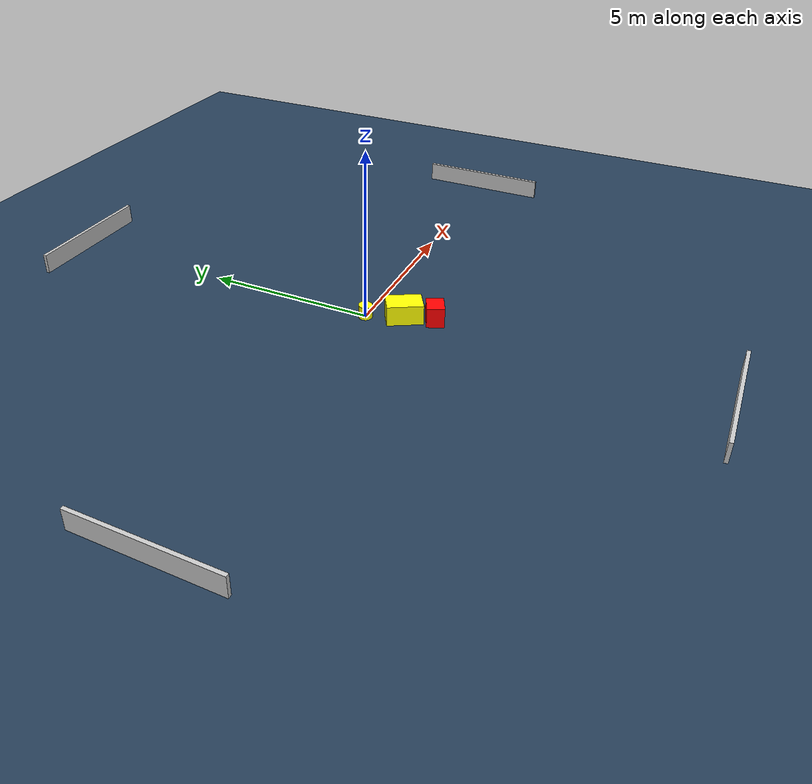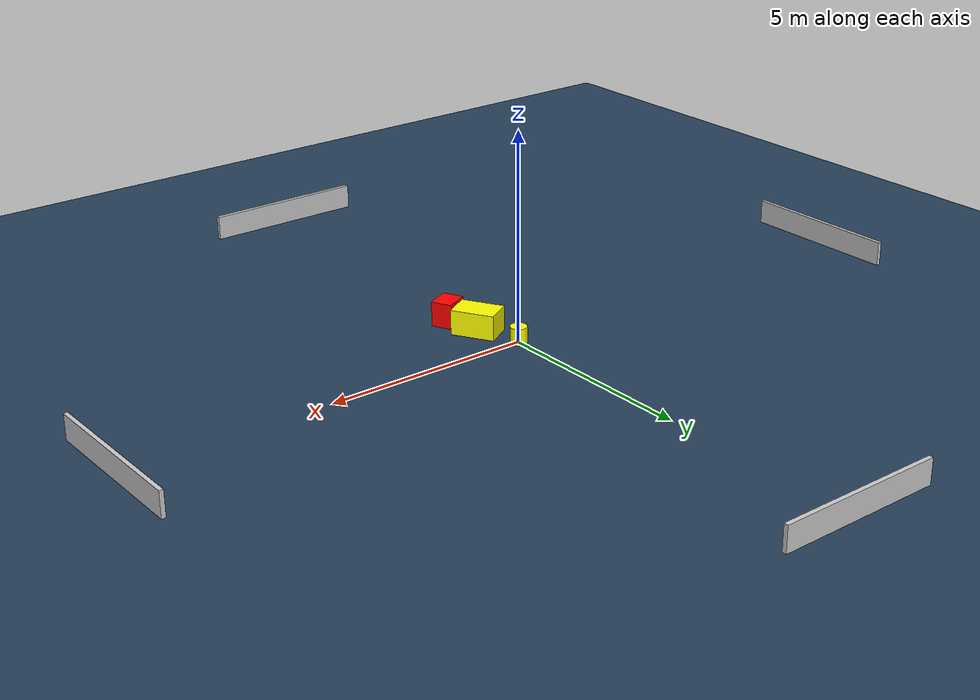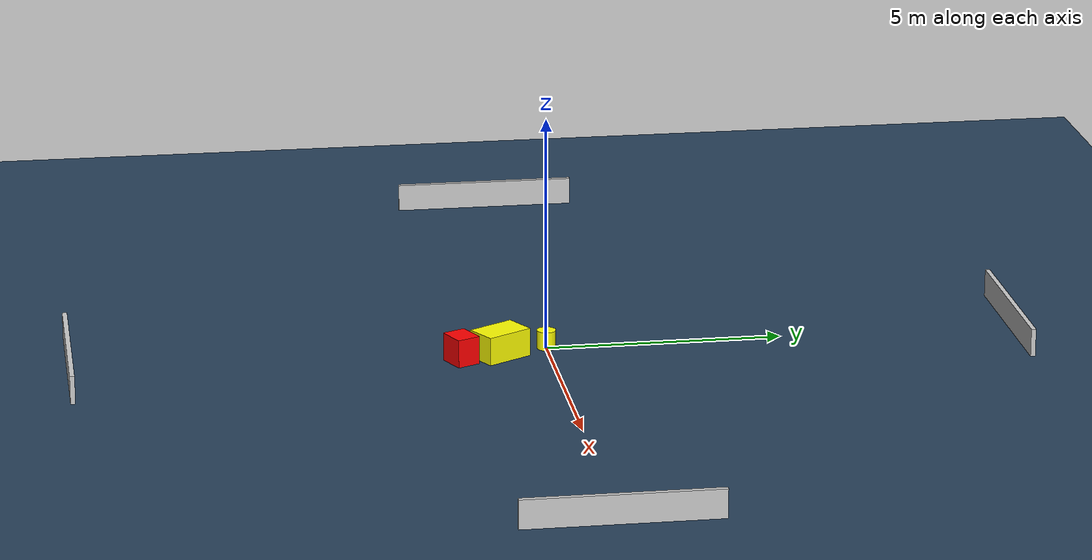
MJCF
<?xml version="1.0" ?>
<mujoco model="generated_environment">
  <option timestep="0.01" integrator="RK4" cone="elliptic"/>
  <default>
    <geom density="1"/>
  </default>
  <asset>
    <texture builtin="gradient" height="3072" name="skybox" rgb1="0.3 0.5 0.7" rgb2="0 0 0" type="skybox" width="512"/>
    <texture builtin="checker" height="300" name="groundplane" rgb1="0.2 0.3 0.4" rgb2="0.1 0.2 0.3" type="2d" width="300"/>
    <material name="groundplane" reflectance="0.2" texrepeat="5 5" texture="groundplane"/>
  </asset>
  <worldbody>
    <light dir="0 0 -1" directional="true" pos="0 0 1.5"/>
    <geom condim="3" friction="0.5 0.005 0.001" material="groundplane" name="floor" pos="0 0 0" size="0 0 0.05" type="plane"/>
    <body name="walls">
      <geom name="wall_1" condim="4" pos="-10.0 0.0 0.3" rgba="0.800000011920929 0.800000011920929 0.800000011920929 1.0" size="0.05 2.0 0.3" type="box"/>
      <geom name="wall_2" condim="4" pos="10.0 0.0 0.3" rgba="0.800000011920929 0.800000011920929 0.800000011920929 1.0" size="0.05 2.0 0.3" type="box"/>
      <geom name="wall_3" condim="4" pos="0.0 -10.0 0.3" rgba="0.800000011920929 0.800000011920929 0.800000011920929 1.0" size="2.0 0.05 0.3" type="box"/>
      <geom name="wall_4" condim="4" pos="0.0 10.0 0.3" rgba="0.800000011920929 0.800000011920929 0.800000011920929 1.0" size="2.0 0.05 0.3" type="box"/>
    </body>
    <body name="robot">
      <joint name="joint_x" type="slide" pos="0 0 0" axis="1 0 0"/>
      <joint name="joint_y" type="slide" pos="0 0 0" axis="0 1 0"/>
      <geom name="robot" type="cylinder" pos="0.0 0.0 0.2" size="0.2 0.2 0.0" mass="5.0" friction="1.0 0.005 0.0001" condim="4" rgba="1.0 1.0 0.0 1.0"/>
    </body>
    <body name="obstacle_1_movable">
      <geom name="obstacle_1_movable" condim="4" pos="0.37622861936482843 -1.0273881817365753 0.3" euler="0 0 209.99432879615063" friction="0.0 0.005 0.001" rgba="1.0 1.0 0.0 1.0" size="0.34269632753888024 0.5242879119511861 0.3" type="box" mass="0.1"/>
      <joint type="free"/>
    </body>
    <body name="obstacle_2_static">
      <geom name="obstacle_2_static" condim="4" pos="0.6040074316034758 -1.8799881303383756 0.3" euler="0 0 115.12945138054094" friction="0.0 0.005 0.001" rgba="1.0 0.0 0.0 1.0" size="0.25491356251437647 0.3018834130259185 0.3" type="box"/>
    </body>
  </worldbody>
  <actuator>
    <motor name="actuator_x" joint="joint_x" gear="1" ctrlrange="-1 1"/>
    <motor name="actuator_y" joint="joint_y" gear="1" ctrlrange="-1 1"/>
  </actuator>
</mujoco>
